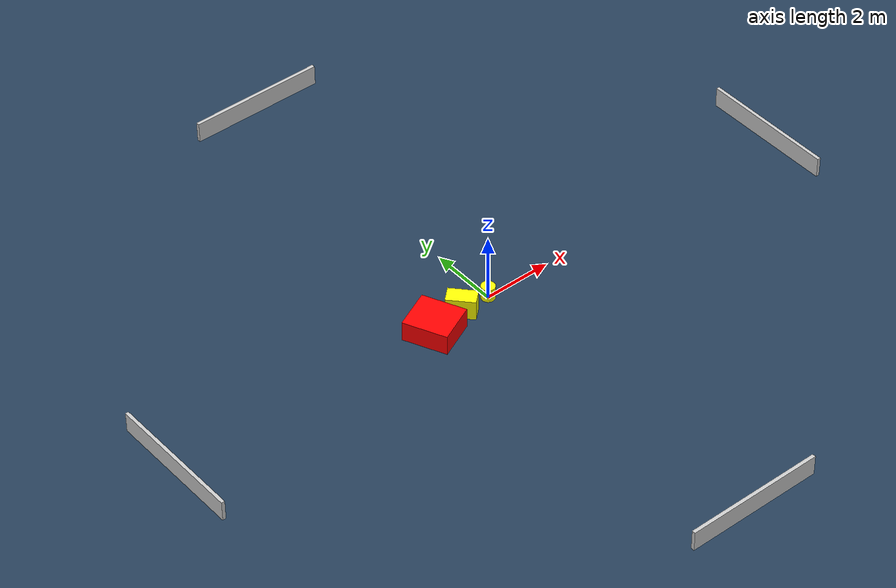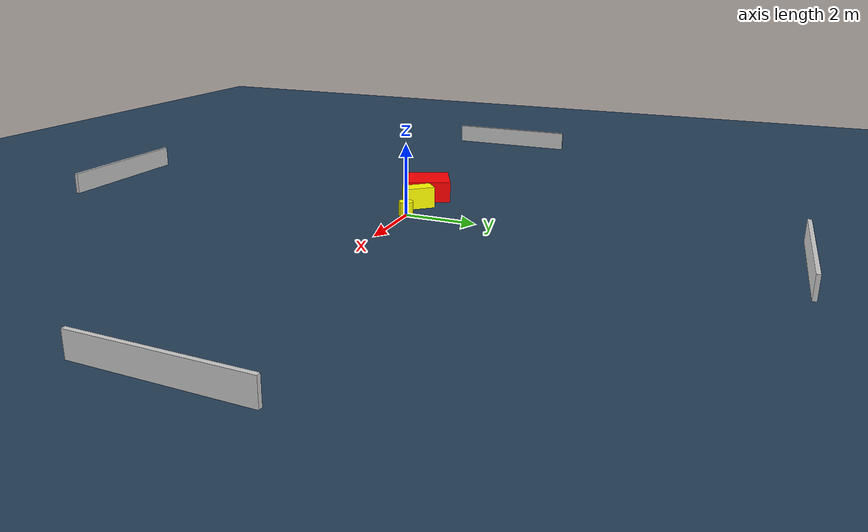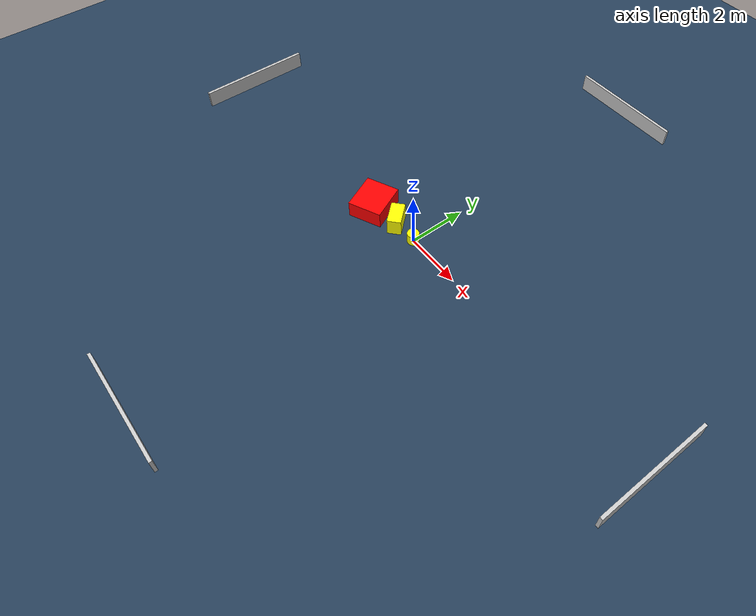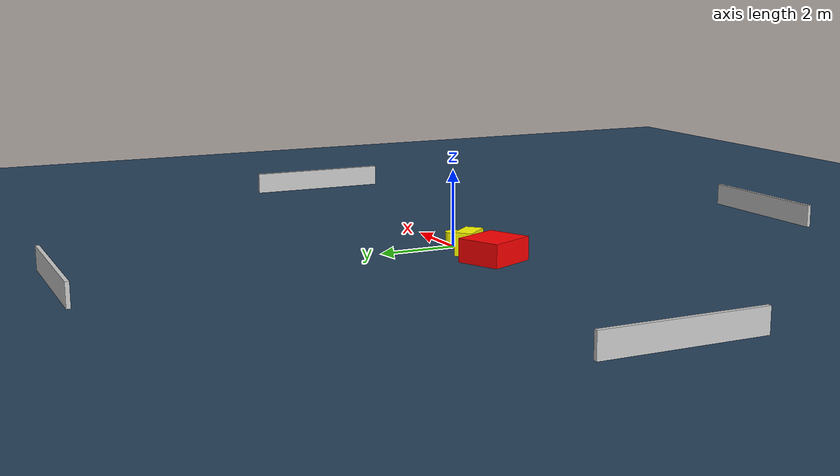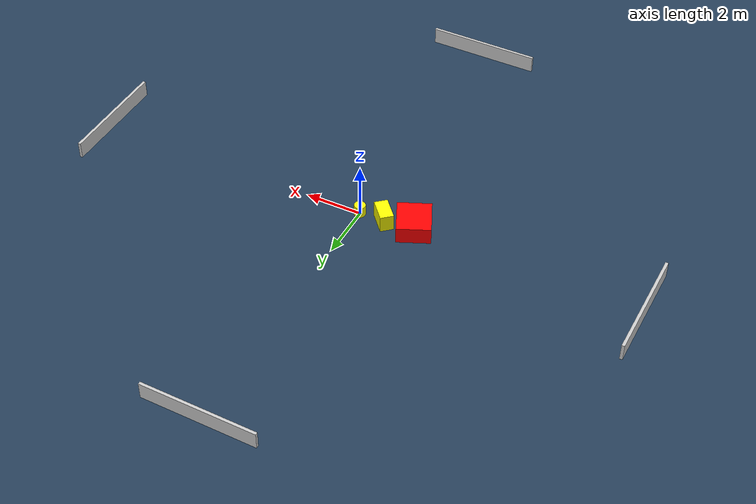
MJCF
<?xml version="1.0" ?>
<mujoco model="generated_environment">
  <option timestep="0.01" integrator="RK4" cone="elliptic"/>
  <default>
    <geom density="1"/>
  </default>
  <asset>
    <texture builtin="gradient" height="3072" name="skybox" rgb1="0.3 0.5 0.7" rgb2="0 0 0" type="skybox" width="512"/>
    <texture builtin="checker" height="300" name="groundplane" rgb1="0.2 0.3 0.4" rgb2="0.1 0.2 0.3" type="2d" width="300"/>
    <material name="groundplane" reflectance="0.2" texrepeat="5 5" texture="groundplane"/>
  </asset>
  <worldbody>
    <light dir="0 0 -1" directional="true" pos="0 0 1.5"/>
    <geom condim="3" friction="0.5 0.005 0.001" material="groundplane" name="floor" pos="0 0 0" size="0 0 0.05" type="plane"/>
    <body name="walls">
      <geom name="wall_1" condim="4" pos="-10.0 0.0 0.3" rgba="0.800000011920929 0.800000011920929 0.800000011920929 1.0" size="0.05 2.0 0.3" type="box"/>
      <geom name="wall_2" condim="4" pos="10.0 0.0 0.3" rgba="0.800000011920929 0.800000011920929 0.800000011920929 1.0" size="0.05 2.0 0.3" type="box"/>
      <geom name="wall_3" condim="4" pos="0.0 -10.0 0.3" rgba="0.800000011920929 0.800000011920929 0.800000011920929 1.0" size="2.0 0.05 0.3" type="box"/>
      <geom name="wall_4" condim="4" pos="0.0 10.0 0.3" rgba="0.800000011920929 0.800000011920929 0.800000011920929 1.0" size="2.0 0.05 0.3" type="box"/>
    </body>
    <body name="robot">
      <joint name="joint_x" type="slide" pos="0 0 0" axis="1 0 0"/>
      <joint name="joint_y" type="slide" pos="0 0 0" axis="0 1 0"/>
      <geom name="robot" type="cylinder" pos="0.0 0.0 0.2" size="0.2 0.2 0.0" mass="5.0" friction="1.0 0.005 0.0001" condim="4" rgba="1.0 1.0 0.0 1.0"/>
    </body>
    <body name="obstacle_1_movable">
      <geom name="obstacle_1_movable" condim="4" pos="-0.8940868890903816 -0.007942761146172483 0.3" euler="0 0 312.09027527744007" friction="0.0 0.005 0.001" rgba="1.0 1.0 0.0 1.0" size="0.4094292983183239 0.2340567087944116 0.3" type="box" mass="0.1"/>
      <joint type="free"/>
    </body>
    <body name="obstacle_2_static">
      <geom name="obstacle_2_static" condim="4" pos="-1.9323818458863768 -0.16424844556398824 0.3" euler="0 0 114.8193943688232" friction="0.0 0.005 0.001" rgba="1.0 0.0 0.0 1.0" size="0.6444453194457241 0.584325122109776 0.3" type="box"/>
    </body>
  </worldbody>
  <actuator>
    <motor name="actuator_x" joint="joint_x" gear="1" ctrlrange="-1 1"/>
    <motor name="actuator_y" joint="joint_y" gear="1" ctrlrange="-1 1"/>
  </actuator>
</mujoco>
